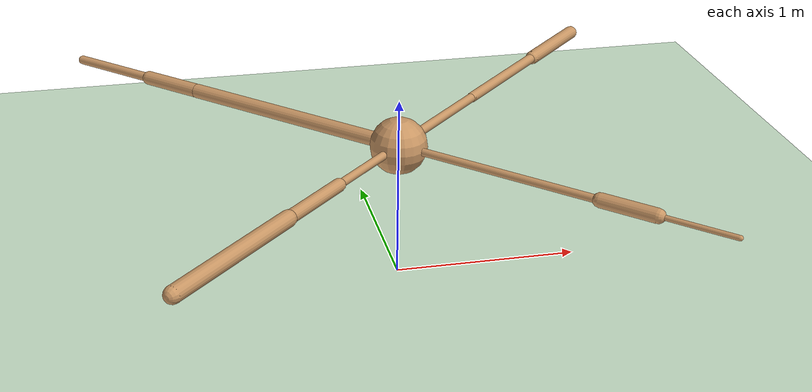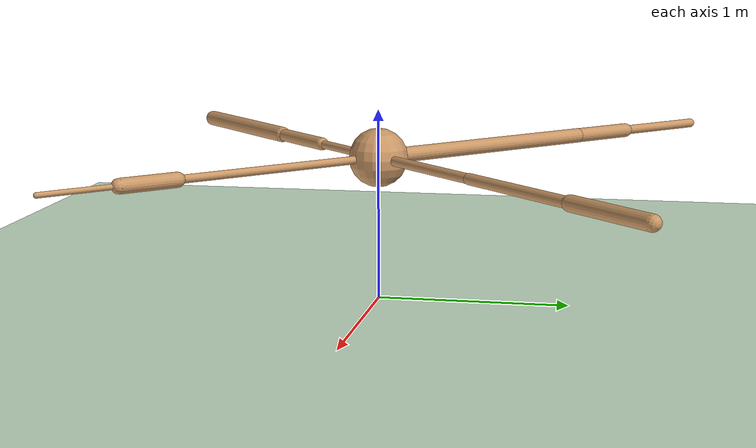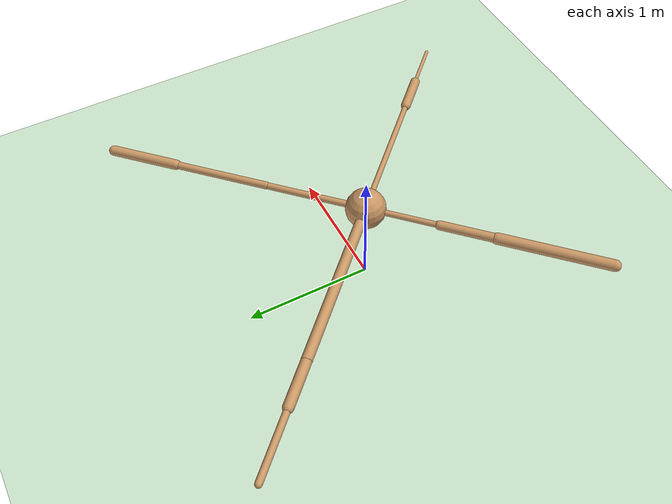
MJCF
<mujoco model="ant">
  <compiler angle="degree" coordinate="local" inertiafromgeom="true" />
  <option integrator="RK4" timestep="0.01" />
  <custom>
    <numeric data="0.0 0.0 0.55 1.0 0.0 0.0 0.0 0.0 1.0 0.0 -1.0 0.0 -1.0 0.0 1.0" name="init_qpos" />
  </custom>
  <default>
    <joint armature="1" damping="1" limited="true" />
    <geom conaffinity="0" condim="3" density="5.0" friction="1 0.5 0.5" margin="0.01" rgba="0.8 0.6 0.4 1" />
  </default>
  <asset>
    <texture builtin="gradient" height="100" rgb1="1 1 1" rgb2="0 0 0" type="skybox" width="100" />
    <texture builtin="flat" height="1278" mark="cross" markrgb="1 1 1" name="texgeom" random="0.01" rgb1="0.8 0.6 0.4" rgb2="0.8 0.6 0.4" type="cube" width="127" />
    <texture builtin="checker" height="100" name="texplane" rgb1="0 0 0" rgb2="0.8 0.8 0.8" type="2d" width="100" />
    <material name="MatPlane" reflectance="0.5" shininess="1" specular="1" texrepeat="60 60" texture="texplane" />
    <material name="geom" texture="texgeom" texuniform="true" />
  </asset>
  <worldbody>
    <light cutoff="100" diffuse="1 1 1" dir="-0 0 -1.3" directional="true" exponent="1" pos="0 0 1.3" specular=".1 .1 .1" />
    <geom conaffinity="1" condim="3" material="MatPlane" name="floor" pos="0 0 0" rgba="0.8 0.9 0.8 1" size="40 40 40" type="plane" />
    <body name="torso" pos="0 0 0.75">
      <camera name="track" mode="trackcom" pos="0 -11 5" xyaxes="1 0 0 0 0.5 1" />
      <geom name="torso_geom" pos="0 0 0" size="0.15376704931259155" type="sphere" />
      <joint armature="0" damping="0" limited="false" margin="0.01" name="root" pos="0 0 0" type="free" />
      <body name="front_left_leg" pos="0 0 0">
        <geom fromto="0 0 0 0.5527641177177429 0.5527641177177429 0" name="aux_1_geom" size="0.025873441249132156" type="capsule" />
        <body name="aux_1" pos="0.5527641177177429 0.5527641177177429 0">
          <joint axis="0 0 1" name="hip_1" pos="0.0 0.0 0.0" range="-30 30" type="hinge" />
          <geom fromto="0 0 0 0.5235074162483215 0.5235074162483215 0" name="left_leg_geom" size="0.028854509815573692" type="capsule" />
          <body name="left_leg_geom_aux" pos="0.5235074162483215 0.5235074162483215 0">
            <joint axis="-1 1 0" name="ankle_1" pos="0.0 0.0 0.0" range="30 70" type="hinge" />
            <geom fromto="0 0 0 0.3690916895866394 0.3690916895866394 0" name="left_ankle_geom" size="0.03963686153292656" type="capsule" />
          </body>
        </body>
      </body>
      <body name="front_right_leg" pos="0 0 0">
        <geom fromto="0 0 0 -0.9647454619407654 0.9647454619407654 0" name="aux_2_geom" size="0.04014217108488083" type="capsule" />
        <body name="aux_2" pos="-0.9647454619407654 0.9647454619407654 0">
          <joint axis="0 0 1" name="hip_2" pos="0.0 0.0 0.0" range="-30 30" type="hinge" />
          <geom fromto="0 0 0 -0.2530166208744049 0.2530166208744049 0" name="right_leg_geom" size="0.03938598930835724" type="capsule" />
          <body name="right_leg_geom_aux" pos="-0.2530166208744049 0.2530166208744049 0">
            <joint axis="1 1 0" name="ankle_2" pos="0.0 0.0 0.0" range="-70 -30" type="hinge" />
            <geom fromto="0 0 0 -0.3716578483581543 0.3716578483581543 0" name="right_ankle_geom" size="0.02554277889430523" type="capsule" />
          </body>
        </body>
      </body>
      <body name="back_leg" pos="0 0 0">
        <geom fromto="0 0 0 -0.39465755224227905 -0.39465755224227905 0" name="aux_3_geom" size="0.022579312324523926" type="capsule" />
        <body name="aux_3" pos="-0.39465755224227905 -0.39465755224227905 0">
          <joint axis="0 0 1" name="hip_3" pos="0.0 0.0 0.0" range="-30 30" type="hinge" />
          <geom fromto="0 0 0 -0.30201563239097595 -0.30201563239097595 0" name="back_leg_geom" size="0.03524245321750641" type="capsule" />
          <body name="back_leg_geom_aux" pos="-0.30201563239097595 -0.30201563239097595 0">
            <joint axis="-1 1 0" name="ankle_3" pos="0.0 0.0 0.0" range="-70 -30" type="hinge" />
            <geom fromto="0 0 0 -0.5951979160308838 -0.5951979160308838 0" name="third_ankle_geom" size="0.043577853590250015" type="capsule" />
          </body>
        </body>
      </body>
      <body name="right_back_leg" pos="0 0 0">
        <geom fromto="0 0 0 0.8156582713127136 -0.8156582713127136 0" name="aux_4_geom" size="0.021223491057753563" type="capsule" />
        <body name="aux_4" pos="0.8156582713127136 -0.8156582713127136 0">
          <joint axis="0 0 1" name="hip_4" pos="0.0 0.0 0.0" range="-30 30" type="hinge" />
          <geom fromto="0 0 0 0.21362358331680298 -0.21362358331680298 0" name="rightback_leg_geom" size="0.03847082704305649" type="capsule" />
          <body name="rightback_leg_geom_aux" pos="0.21362358331680298 -0.21362358331680298 0">
            <joint axis="1 1 0" name="ankle_4" pos="0.0 0.0 0.0" range="30 70" type="hinge" />
            <geom fromto="0 0 0 0.2856164574623108 -0.2856164574623108 0" name="fourth_ankle_geom" size="0.014104359783232212" type="capsule" />
          </body>
        </body>
      </body>
    </body>
  </worldbody>
  <actuator>
    <motor ctrllimited="true" ctrlrange="-1.0 1.0" joint="hip_4" gear="150" />
    <motor ctrllimited="true" ctrlrange="-1.0 1.0" joint="ankle_4" gear="150" />
    <motor ctrllimited="true" ctrlrange="-1.0 1.0" joint="hip_1" gear="150" />
    <motor ctrllimited="true" ctrlrange="-1.0 1.0" joint="ankle_1" gear="150" />
    <motor ctrllimited="true" ctrlrange="-1.0 1.0" joint="hip_2" gear="150" />
    <motor ctrllimited="true" ctrlrange="-1.0 1.0" joint="ankle_2" gear="150" />
    <motor ctrllimited="true" ctrlrange="-1.0 1.0" joint="hip_3" gear="150" />
    <motor ctrllimited="true" ctrlrange="-1.0 1.0" joint="ankle_3" gear="150" />
  </actuator>
</mujoco>
